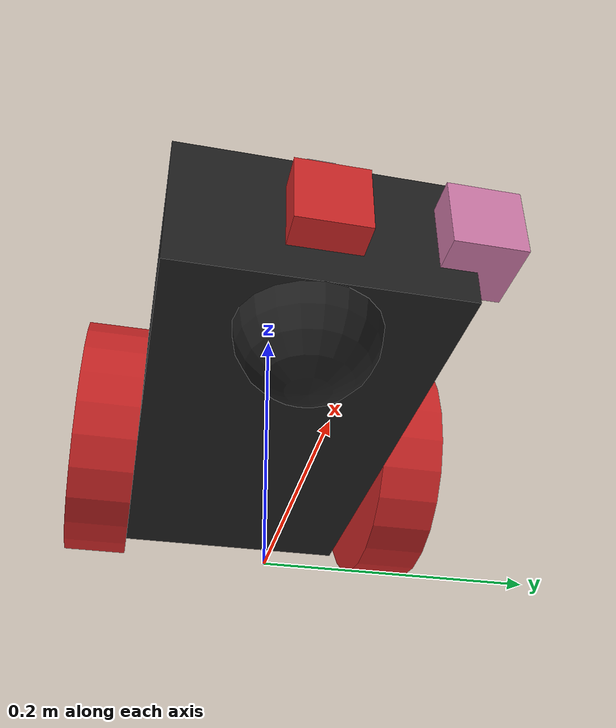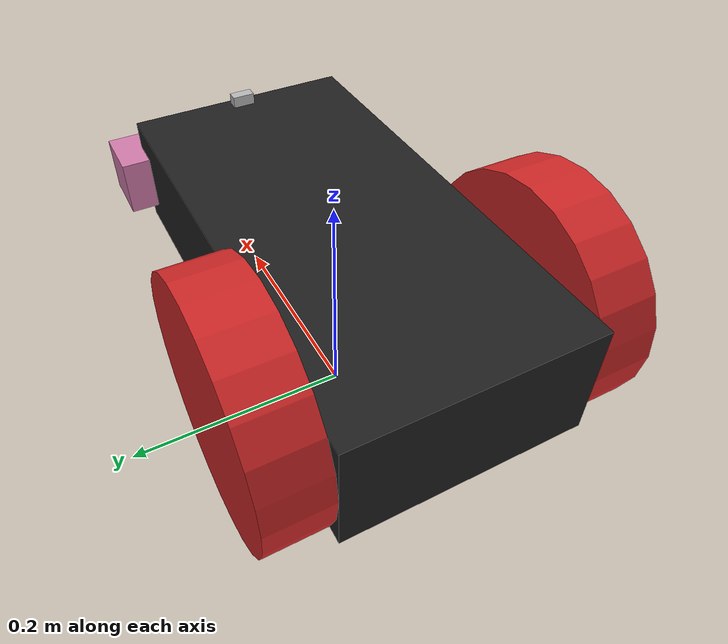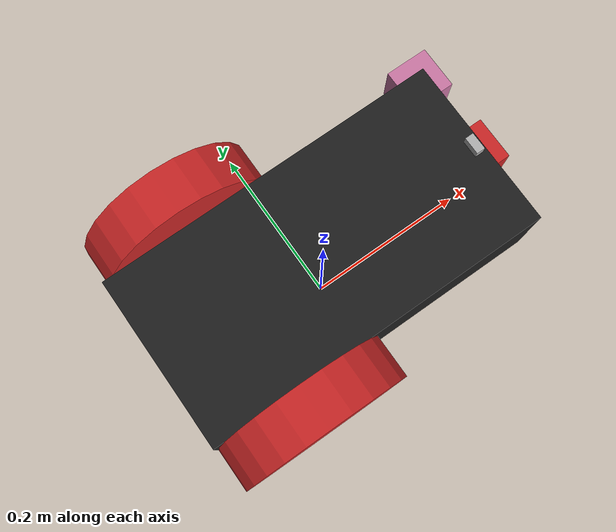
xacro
<?xml version='1.0'?>

<robot name="slambot" xmlns:xacro="http://www.ros.org/wiki/xacro">

  <xacro:property name="cameraSize" value="0.05"/>
  <xacro:property name="cameraMass" value="0.1"/>

  <xacro:include filename="$(find slambot)/urdf/roomba/slambot.gazebo.xacro" />
  <xacro:include filename="$(find slambot)/urdf/roomba/materials.xacro" />
  <xacro:include filename="$(find slambot)/urdf/roomba/inertial_macros.xacro" />

		<link name="base_link"/>

		<joint name="base_joint" type = "fixed">
			<parent link="base_link"/>
			<child link="chassis"/>
			<origin xyz="0 0 0.15" rpy="0 0 0"/>
		</joint>

    <link name='chassis'>
    <pose>0 0 0.1 0 0 0</pose>

    <inertial>
      <mass value="10.0"/>
      <origin xyz="0.0 0 0.1" rpy=" 0 0 0"/>
      <inertia
          ixx="0.5" ixy="0" ixz="0"
          iyy="1.0" iyz="0"
          izz="0.1"
      />
    </inertial>

    <collision name='collision'>
      <geometry>
        <box size=".4 .2 .1"/>
      </geometry>
    </collision>

    <visual name='chassis_visual'>
      <origin xyz="0 0 0" rpy=" 0 0 0"/>
      <geometry>
        <box size=".4 .2 .1"/>
      </geometry>
    </visual>
  </link>

  <joint name="caster_wheel_joint" type="fixed">
        <parent link="chassis"/>
        <child link="caster_wheel"/>
        <origin xyz="0.15 0 -0.05"/>
    </joint>

    <link name="caster_wheel">
        <visual>
            <geometry>
                <sphere radius="0.05"/>
            </geometry>
            <material name="black"/>
        </visual>
        <collision>
            <geometry>
                <sphere radius="0.05"/>
            </geometry>
        </collision>
        <xacro:inertial_sphere mass="0.1" radius="0.05">
            <origin xyz="0 0 0" rpy="0 0 0"/>
        </xacro:inertial_sphere>
    </link>

  <link name="left_wheel">
    <!--origin xyz="-0.1 0.13 0.1" rpy="0 1.5707 1.5707"/-->
    <collision name="collision">
      <origin xyz="0 0 0" rpy="0 1.5707 1.5707"/>
      <geometry>
        <cylinder radius="0.1" length="0.05"/>
      </geometry>
    </collision>
    <visual name="left_wheel_visual">
      <origin xyz="0 0 0" rpy="0 1.5707 1.5707"/>
      <geometry>
        <cylinder radius="0.1" length="0.05"/>
      </geometry>
    </visual>
    <inertial>
      <origin xyz="0 0 0" rpy="0 1.5707 1.5707"/>
      <mass value="5"/>
      <inertia
        ixx="1" ixy="0.0" ixz="0.0"
        iyy="1" iyz="0.0"
        izz="1"/>
    </inertial>
  </link>

  <link name="right_wheel">
    <!--origin xyz="-0.1 -0.13 0.1" rpy="0 1.5707 1.5707"/-->
    <collision name="collision">
      <origin xyz="0 0 0" rpy="0 1.5707 1.5707"/>
      <geometry>
        <cylinder radius="0.1" length="0.05"/>
      </geometry>
    </collision>
    <visual name="right_wheel_visual">
      <origin xyz="0 0 0" rpy="0 1.5707 1.5707"/>
      <geometry>
        <cylinder radius="0.1" length="0.05"/>
      </geometry>
    </visual>
    <inertial>
      <origin xyz="0 0 0" rpy="0 1.5707 1.5707"/>
      <mass value="5"/>
      <inertia
        ixx="1" ixy="0.0" ixz="0.0"
        iyy="1" iyz="0.0"
        izz="1"/>
    </inertial>
  </link>

  <joint type="continuous" name="left_wheel_hinge">
    <origin xyz="-0.1 0.125 0" rpy="0 0 0"/>
    <!--origin xyz="-0.1 0.13 0" rpy="0 1.5707 1.5707"/-->
    <child link="left_wheel"/>
    <parent link="chassis"/>
    <axis xyz="0 1 0" rpy="0 0 0"/>
    <limit effort="100" velocity="10"/>
    <joint_properties damping="1" friction="0"/>
  </joint>

  <joint type="continuous" name="right_wheel_hinge">
    <origin xyz="-0.1 -0.125 0" rpy="0 0 0"/>
    <!--origin xyz="-0.1 -0.13 0" rpy="0 1.5707 1.5707"/-->
    <child link="right_wheel"/>
    <parent link="chassis"/>
    <axis xyz="0 1 0" rpy="0 0 0"/>
    <limit effort="100" velocity="10"/>
    <joint_properties damping="1" friction="0"/>
  </joint>

<!--Camera Link-->
<link name="camera">
    <collision>
      <origin xyz="0 0 0" rpy="0 0 0"/>
      <geometry>
        <box size="${cameraSize} ${cameraSize} ${cameraSize}"/>
      </geometry>
    </collision>

    <visual>
      <origin xyz="0 0 0" rpy="0 0 0"/>
      <geometry>
        <box size="${cameraSize} ${cameraSize} ${cameraSize}"/>
      </geometry>
    </visual>

    <inertial>
      <mass value="${cameraMass}" />
      <origin xyz="0 0 0" rpy="0 0 0"/>
      <box_inertia m="${cameraMass}" x="${cameraSize}" y="${cameraSize}" z="${cameraSize}" />
      <inertia ixx="1e-6" ixy="0" ixz="0" iyy="1e-6" iyz="0" izz="1e-6" />
    </inertial>
  </link>

  <joint name="depth_camera_joint" type="fixed">
    <axis xyz="0 1 0" />
    <origin xyz="0.2 0.1 0" rpy="0 0 0"/>
    <parent link="chassis"/>
    <child link="depth_cam_link"/>
  </joint>

<!--Depth Camera Link-->
<link name="depth_cam_link">
    <collision>
      <origin xyz="0 0 0" rpy="0 0 0"/>
      <geometry>
        <box size="${cameraSize} ${cameraSize} ${cameraSize}"/>
      </geometry>
    </collision>

    <visual>
      <origin xyz="0 0 0" rpy="0 0 0"/>
      <geometry>
        <box size="${cameraSize} ${cameraSize} ${cameraSize}"/>
      </geometry>
    </visual>

    <inertial>
      <mass value="${cameraMass}" />
      <origin xyz="0 0 0" rpy="0 0 0"/>
      <box_inertia m="${cameraMass}" x="${cameraSize}" y="${cameraSize}" z="${cameraSize}" />
      <inertia ixx="1e-6" ixy="0" ixz="0" iyy="1e-6" iyz="0" izz="1e-6" />
    </inertial>
  </link>

  <joint name="camera_joint" type="fixed">
    <axis xyz="0 1 0" />
    <origin xyz=".2 0 0" rpy="0 0 0"/>
    <parent link="chassis"/>
    <child link="camera"/>
  </joint>

    <joint name="hokuyo_joint" type="fixed">
    <axis xyz="0 1 0" />
    <origin xyz="0.19 0 0.055" rpy="0 0 0"/>
    <parent link="chassis"/>
    <child link="hokuyo"/>
  </joint>

  <!-- Hokuyo Laser -->
  <link name="hokuyo">
    <collision>
      <origin xyz="0 0 0" rpy="0 0 0"/>
      <geometry>
    		<box size=".01 .02 .01"/>
      </geometry>
    </collision>

    <visual>
      <origin xyz="0 0 0" rpy="0 0 0"/>
      <geometry>
        <box size=".01 .02 .01"/>
      </geometry>
    </visual>

    <inertial>
      <mass value="1e-5" />
      <origin xyz="0 0 0" rpy="0 0 0"/>
      <inertia ixx="1e-6" ixy="0" ixz="0" iyy="1e-6" iyz="0" izz="1e-6" />
    </inertial>
  </link>

</robot>
